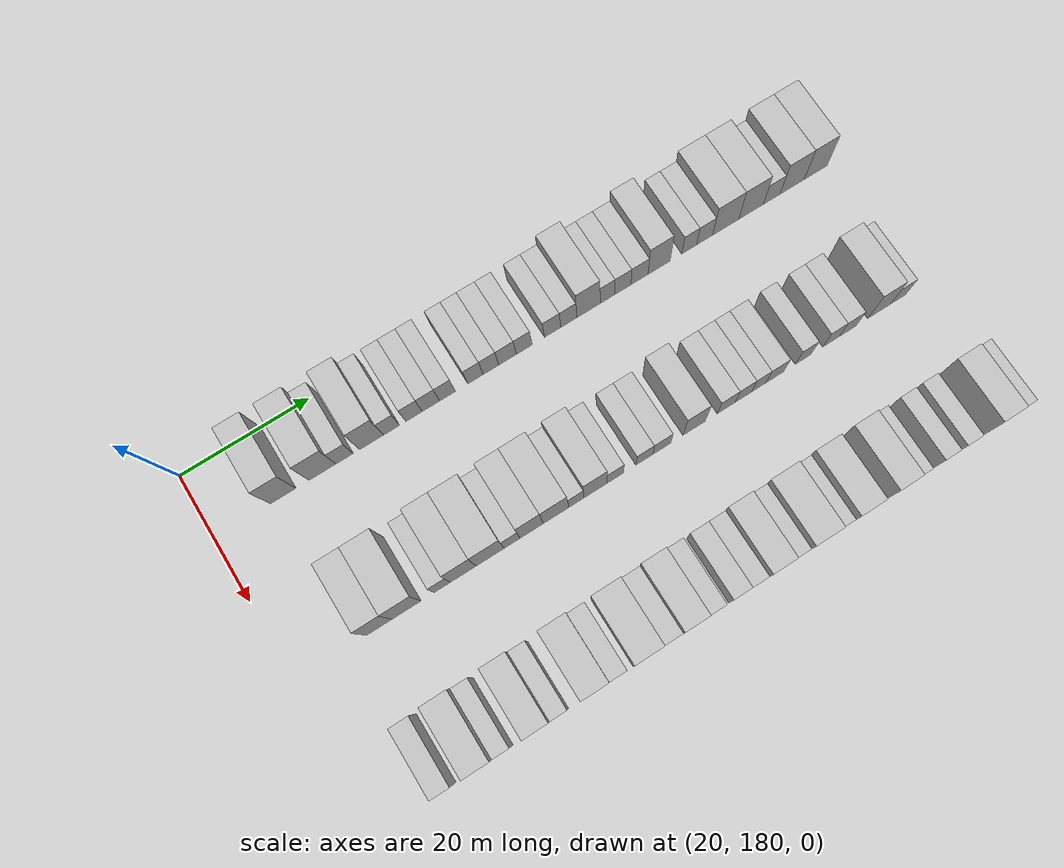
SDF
<sdf version="1.6">
 <world name="default">
  <model name="building_149">
   <static>1</static>
   <pose>25.0000 190.4845 0 0.000000 0.000000 0.000000</pose>
   <link name="link">
    <pose>0 0 4.50 0 0 0</pose>
    <collision name="collision"><geometry><box><size>10.0000 3.9101 9.0000</size></box></geometry></collision>
    <visual name="visual">
     <cast_shadows>0</cast_shadows>
     <geometry><box><size>10.0000 3.9101 9.0000</size></box></geometry>
     <material>
      <script>
       <uri>model://HANNAS_wall/materials/scripts</uri>
       <uri>model://HANNAS_wall/materials/textures</uri>
       <name>vrc/HANNAS_wall</name>
      </script>
     </material>
    </visual>
   </link>
  </model>
  <model name="building_150">
   <static>1</static>
   <pose>25.0000 196.5161 0 0.000000 0.000000 0.000000</pose>
   <link name="link">
    <pose>0 0 4.50 0 0 0</pose>
    <collision name="collision"><geometry><box><size>10.0000 4.1531 9.0000</size></box></geometry></collision>
    <visual name="visual">
     <cast_shadows>0</cast_shadows>
     <geometry><box><size>10.0000 4.1531 9.0000</size></box></geometry>
     <material>
      <script>
       <uri>model://HANNAS_wall/materials/scripts</uri>
       <uri>model://HANNAS_wall/materials/textures</uri>
       <name>vrc/HANNAS_wall</name>
      </script>
     </material>
    </visual>
   </link>
  </model>
  <model name="building_151">
   <static>1</static>
   <pose>25.0000 199.9402 0 0.000000 0.000000 0.000000</pose>
   <link name="link">
    <pose>0 0 3.00 0 0 0</pose>
    <collision name="collision"><geometry><box><size>10.0000 2.6950 6.0000</size></box></geometry></collision>
    <visual name="visual">
     <cast_shadows>0</cast_shadows>
     <geometry><box><size>10.0000 2.6950 6.0000</size></box></geometry>
     <material>
      <script>
       <uri>model://HANNAS_wall/materials/scripts</uri>
       <uri>model://HANNAS_wall/materials/textures</uri>
       <name>vrc/HANNAS_wall</name>
      </script>
     </material>
    </visual>
   </link>
  </model>
  <model name="building_152">
   <static>1</static>
   <pose>25.0000 204.1609 0 0.000000 0.000000 0.000000</pose>
   <link name="link">
    <pose>0 0 4.50 0 0 0</pose>
    <collision name="collision"><geometry><box><size>10.0000 3.7463 9.0000</size></box></geometry></collision>
    <visual name="visual">
     <cast_shadows>0</cast_shadows>
     <geometry><box><size>10.0000 3.7463 9.0000</size></box></geometry>
     <material>
      <script>
       <uri>model://HANNAS_wall/materials/scripts</uri>
       <uri>model://HANNAS_wall/materials/textures</uri>
       <name>vrc/HANNAS_wall</name>
      </script>
     </material>
    </visual>
   </link>
  </model>
  <model name="building_153">
   <static>1</static>
   <pose>25.0000 207.2928 0 0.000000 0.000000 0.000000</pose>
   <link name="link">
    <pose>0 0 3.00 0 0 0</pose>
    <collision name="collision"><geometry><box><size>10.0000 2.5176 6.0000</size></box></geometry></collision>
    <visual name="visual">
     <cast_shadows>0</cast_shadows>
     <geometry><box><size>10.0000 2.5176 6.0000</size></box></geometry>
     <material>
      <script>
       <uri>model://HANNAS_wall/materials/scripts</uri>
       <uri>model://HANNAS_wall/materials/textures</uri>
       <name>vrc/HANNAS_wall</name>
      </script>
     </material>
    </visual>
   </link>
  </model>
  <model name="building_154">
   <static>1</static>
   <pose>25.0000 210.8460 0 0.000000 0.000000 0.000000</pose>
   <link name="link">
    <pose>0 0 3.00 0 0 0</pose>
    <collision name="collision"><geometry><box><size>10.0000 2.5887 6.0000</size></box></geometry></collision>
    <visual name="visual">
     <cast_shadows>0</cast_shadows>
     <geometry><box><size>10.0000 2.5887 6.0000</size></box></geometry>
     <material>
      <script>
       <uri>model://HANNAS_wall/materials/scripts</uri>
       <uri>model://HANNAS_wall/materials/textures</uri>
       <name>vrc/HANNAS_wall</name>
      </script>
     </material>
    </visual>
   </link>
  </model>
  <model name="building_155">
   <static>1</static>
   <pose>25.0000 213.5233 0 0.000000 0.000000 0.000000</pose>
   <link name="link">
    <pose>0 0 3.00 0 0 0</pose>
    <collision name="collision"><geometry><box><size>10.0000 2.7658 6.0000</size></box></geometry></collision>
    <visual name="visual">
     <cast_shadows>0</cast_shadows>
     <geometry><box><size>10.0000 2.7658 6.0000</size></box></geometry>
     <material>
      <script>
       <uri>model://HANNAS_wall/materials/scripts</uri>
       <uri>model://HANNAS_wall/materials/textures</uri>
       <name>vrc/HANNAS_wall</name>
      </script>
     </material>
    </visual>
   </link>
  </model>
  <model name="building_156">
   <static>1</static>
   <pose>25.0000 216.1573 0 0.000000 0.000000 0.000000</pose>
   <link name="link">
    <pose>0 0 3.00 0 0 0</pose>
    <collision name="collision"><geometry><box><size>10.0000 2.5023 6.0000</size></box></geometry></collision>
    <visual name="visual">
     <cast_shadows>0</cast_shadows>
     <geometry><box><size>10.0000 2.5023 6.0000</size></box></geometry>
     <material>
      <script>
       <uri>model://HANNAS_wall/materials/scripts</uri>
       <uri>model://HANNAS_wall/materials/textures</uri>
       <name>vrc/HANNAS_wall</name>
      </script>
     </material>
    </visual>
   </link>
  </model>
  <model name="building_157">
   <static>1</static>
   <pose>25.0000 220.6435 0 0.000000 0.000000 0.000000</pose>
   <link name="link">
    <pose>0 0 3.00 0 0 0</pose>
    <collision name="collision"><geometry><box><size>10.0000 2.4700 6.0000</size></box></geometry></collision>
    <visual name="visual">
     <cast_shadows>0</cast_shadows>
     <geometry><box><size>10.0000 2.4700 6.0000</size></box></geometry>
     <material>
      <script>
       <uri>model://HANNAS_wall/materials/scripts</uri>
       <uri>model://HANNAS_wall/materials/textures</uri>
       <name>vrc/HANNAS_wall</name>
      </script>
     </material>
    </visual>
   </link>
  </model>
  <model name="building_158">
   <static>1</static>
   <pose>25.0000 223.1380 0 0.000000 0.000000 0.000000</pose>
   <link name="link">
    <pose>0 0 3.00 0 0 0</pose>
    <collision name="collision"><geometry><box><size>10.0000 2.5190 6.0000</size></box></geometry></collision>
    <visual name="visual">
     <cast_shadows>0</cast_shadows>
     <geometry><box><size>10.0000 2.5190 6.0000</size></box></geometry>
     <material>
      <script>
       <uri>model://HANNAS_wall/materials/scripts</uri>
       <uri>model://HANNAS_wall/materials/textures</uri>
       <name>vrc/HANNAS_wall</name>
      </script>
     </material>
    </visual>
   </link>
  </model>
  <model name="building_159">
   <static>1</static>
   <pose>25.0000 225.8268 0 0.000000 0.000000 0.000000</pose>
   <link name="link">
    <pose>0 0 3.00 0 0 0</pose>
    <collision name="collision"><geometry><box><size>10.0000 2.8584 6.0000</size></box></geometry></collision>
    <visual name="visual">
     <cast_shadows>0</cast_shadows>
     <geometry><box><size>10.0000 2.8584 6.0000</size></box></geometry>
     <material>
      <script>
       <uri>model://HANNAS_wall/materials/scripts</uri>
       <uri>model://HANNAS_wall/materials/textures</uri>
       <name>vrc/HANNAS_wall</name>
      </script>
     </material>
    </visual>
   </link>
  </model>
  <model name="building_160">
   <static>1</static>
   <pose>25.0000 228.5409 0 0.000000 0.000000 0.000000</pose>
   <link name="link">
    <pose>0 0 3.00 0 0 0</pose>
    <collision name="collision"><geometry><box><size>10.0000 2.5699 6.0000</size></box></geometry></collision>
    <visual name="visual">
     <cast_shadows>0</cast_shadows>
     <geometry><box><size>10.0000 2.5699 6.0000</size></box></geometry>
     <material>
      <script>
       <uri>model://HANNAS_wall/materials/scripts</uri>
       <uri>model://HANNAS_wall/materials/textures</uri>
       <name>vrc/HANNAS_wall</name>
      </script>
     </material>
    </visual>
   </link>
  </model>
  <model name="building_161">
   <static>1</static>
   <pose>25.0000 233.1657 0 0.000000 0.000000 0.000000</pose>
   <link name="link">
    <pose>0 0 3.00 0 0 0</pose>
    <collision name="collision"><geometry><box><size>10.0000 2.6796 6.0000</size></box></geometry></collision>
    <visual name="visual">
     <cast_shadows>0</cast_shadows>
     <geometry><box><size>10.0000 2.6796 6.0000</size></box></geometry>
     <material>
      <script>
       <uri>model://HANNAS_wall/materials/scripts</uri>
       <uri>model://HANNAS_wall/materials/textures</uri>
       <name>vrc/HANNAS_wall</name>
      </script>
     </material>
    </visual>
   </link>
  </model>
  <model name="building_162">
   <static>1</static>
   <pose>25.0000 235.8285 0 0.000000 0.000000 0.000000</pose>
   <link name="link">
    <pose>0 0 3.00 0 0 0</pose>
    <collision name="collision"><geometry><box><size>10.0000 2.6459 6.0000</size></box></geometry></collision>
    <visual name="visual">
     <cast_shadows>0</cast_shadows>
     <geometry><box><size>10.0000 2.6459 6.0000</size></box></geometry>
     <material>
      <script>
       <uri>model://HANNAS_wall/materials/scripts</uri>
       <uri>model://HANNAS_wall/materials/textures</uri>
       <name>vrc/HANNAS_wall</name>
      </script>
     </material>
    </visual>
   </link>
  </model>
  <model name="building_163">
   <static>1</static>
   <pose>25.0000 239.0754 0 0.000000 0.000000 0.000000</pose>
   <link name="link">
    <pose>0 0 4.50 0 0 0</pose>
    <collision name="collision"><geometry><box><size>10.0000 3.8479 9.0000</size></box></geometry></collision>
    <visual name="visual">
     <cast_shadows>0</cast_shadows>
     <geometry><box><size>10.0000 3.8479 9.0000</size></box></geometry>
     <material>
      <script>
       <uri>model://HANNAS_wall/materials/scripts</uri>
       <uri>model://HANNAS_wall/materials/textures</uri>
       <name>vrc/HANNAS_wall</name>
      </script>
     </material>
    </visual>
   </link>
  </model>
  <model name="building_164">
   <static>1</static>
   <pose>25.0000 242.2130 0 0.000000 0.000000 0.000000</pose>
   <link name="link">
    <pose>0 0 3.00 0 0 0</pose>
    <collision name="collision"><geometry><box><size>10.0000 2.4274 6.0000</size></box></geometry></collision>
    <visual name="visual">
     <cast_shadows>0</cast_shadows>
     <geometry><box><size>10.0000 2.4274 6.0000</size></box></geometry>
     <material>
      <script>
       <uri>model://HANNAS_wall/materials/scripts</uri>
       <uri>model://HANNAS_wall/materials/textures</uri>
       <name>vrc/HANNAS_wall</name>
      </script>
     </material>
    </visual>
   </link>
  </model>
  <model name="building_165">
   <static>1</static>
   <pose>25.0000 244.7848 0 0.000000 0.000000 0.000000</pose>
   <link name="link">
    <pose>0 0 3.00 0 0 0</pose>
    <collision name="collision"><geometry><box><size>10.0000 2.7164 6.0000</size></box></geometry></collision>
    <visual name="visual">
     <cast_shadows>0</cast_shadows>
     <geometry><box><size>10.0000 2.7164 6.0000</size></box></geometry>
     <material>
      <script>
       <uri>model://HANNAS_wall/materials/scripts</uri>
       <uri>model://HANNAS_wall/materials/textures</uri>
       <name>vrc/HANNAS_wall</name>
      </script>
     </material>
    </visual>
   </link>
  </model>
  <model name="building_166">
   <static>1</static>
   <pose>25.0000 247.5708 0 0.000000 0.000000 0.000000</pose>
   <link name="link">
    <pose>0 0 3.00 0 0 0</pose>
    <collision name="collision"><geometry><box><size>10.0000 2.8555 6.0000</size></box></geometry></collision>
    <visual name="visual">
     <cast_shadows>0</cast_shadows>
     <geometry><box><size>10.0000 2.8555 6.0000</size></box></geometry>
     <material>
      <script>
       <uri>model://HANNAS_wall/materials/scripts</uri>
       <uri>model://HANNAS_wall/materials/textures</uri>
       <name>vrc/HANNAS_wall</name>
      </script>
     </material>
    </visual>
   </link>
  </model>
  <model name="building_167">
   <static>1</static>
   <pose>25.0000 250.8667 0 0.000000 0.000000 0.000000</pose>
   <link name="link">
    <pose>0 0 4.50 0 0 0</pose>
    <collision name="collision"><geometry><box><size>10.0000 3.7363 9.0000</size></box></geometry></collision>
    <visual name="visual">
     <cast_shadows>0</cast_shadows>
     <geometry><box><size>10.0000 3.7363 9.0000</size></box></geometry>
     <material>
      <script>
       <uri>model://HANNAS_wall/materials/scripts</uri>
       <uri>model://HANNAS_wall/materials/textures</uri>
       <name>vrc/HANNAS_wall</name>
      </script>
     </material>
    </visual>
   </link>
  </model>
  <model name="building_168">
   <static>1</static>
   <pose>25.0000 255.9818 0 0.000000 0.000000 0.000000</pose>
   <link name="link">
    <pose>0 0 3.00 0 0 0</pose>
    <collision name="collision"><geometry><box><size>10.0000 2.4939 6.0000</size></box></geometry></collision>
    <visual name="visual">
     <cast_shadows>0</cast_shadows>
     <geometry><box><size>10.0000 2.4939 6.0000</size></box></geometry>
     <material>
      <script>
       <uri>model://HANNAS_wall/materials/scripts</uri>
       <uri>model://HANNAS_wall/materials/textures</uri>
       <name>vrc/HANNAS_wall</name>
      </script>
     </material>
    </visual>
   </link>
  </model>
  <model name="building_169">
   <static>1</static>
   <pose>25.0000 258.5982 0 0.000000 0.000000 0.000000</pose>
   <link name="link">
    <pose>0 0 3.00 0 0 0</pose>
    <collision name="collision"><geometry><box><size>10.0000 2.7389 6.0000</size></box></geometry></collision>
    <visual name="visual">
     <cast_shadows>0</cast_shadows>
     <geometry><box><size>10.0000 2.7389 6.0000</size></box></geometry>
     <material>
      <script>
       <uri>model://HANNAS_wall/materials/scripts</uri>
       <uri>model://HANNAS_wall/materials/textures</uri>
       <name>vrc/HANNAS_wall</name>
      </script>
     </material>
    </visual>
   </link>
  </model>
  <model name="building_170">
   <static>1</static>
   <pose>25.0000 262.2119 0 0.000000 0.000000 0.000000</pose>
   <link name="link">
    <pose>0 0 4.50 0 0 0</pose>
    <collision name="collision"><geometry><box><size>10.0000 4.4885 9.0000</size></box></geometry></collision>
    <visual name="visual">
     <cast_shadows>0</cast_shadows>
     <geometry><box><size>10.0000 4.4885 9.0000</size></box></geometry>
     <material>
      <script>
       <uri>model://HANNAS_wall/materials/scripts</uri>
       <uri>model://HANNAS_wall/materials/textures</uri>
       <name>vrc/HANNAS_wall</name>
      </script>
     </material>
    </visual>
   </link>
  </model>
  <model name="building_171">
   <static>1</static>
   <pose>25.0000 266.5894 0 0.000000 0.000000 0.000000</pose>
   <link name="link">
    <pose>0 0 4.50 0 0 0</pose>
    <collision name="collision"><geometry><box><size>10.0000 4.2665 9.0000</size></box></geometry></collision>
    <visual name="visual">
     <cast_shadows>0</cast_shadows>
     <geometry><box><size>10.0000 4.2665 9.0000</size></box></geometry>
     <material>
      <script>
       <uri>model://HANNAS_wall/materials/scripts</uri>
       <uri>model://HANNAS_wall/materials/textures</uri>
       <name>vrc/HANNAS_wall</name>
      </script>
     </material>
    </visual>
   </link>
  </model>
  <model name="building_172">
   <static>1</static>
   <pose>25.0000 270.1685 0 0.000000 0.000000 0.000000</pose>
   <link name="link">
    <pose>0 0 3.00 0 0 0</pose>
    <collision name="collision"><geometry><box><size>10.0000 2.8918 6.0000</size></box></geometry></collision>
    <visual name="visual">
     <cast_shadows>0</cast_shadows>
     <geometry><box><size>10.0000 2.8918 6.0000</size></box></geometry>
     <material>
      <script>
       <uri>model://HANNAS_wall/materials/scripts</uri>
       <uri>model://HANNAS_wall/materials/textures</uri>
       <name>vrc/HANNAS_wall</name>
      </script>
     </material>
    </visual>
   </link>
  </model>
  <model name="building_173">
   <static>1</static>
   <pose>25.0000 273.7298 0 0.000000 0.000000 0.000000</pose>
   <link name="link">
    <pose>0 0 4.50 0 0 0</pose>
    <collision name="collision"><geometry><box><size>10.0000 4.2309 9.0000</size></box></geometry></collision>
    <visual name="visual">
     <cast_shadows>0</cast_shadows>
     <geometry><box><size>10.0000 4.2309 9.0000</size></box></geometry>
     <material>
      <script>
       <uri>model://HANNAS_wall/materials/scripts</uri>
       <uri>model://HANNAS_wall/materials/textures</uri>
       <name>vrc/HANNAS_wall</name>
      </script>
     </material>
    </visual>
   </link>
  </model>
  <model name="building_174">
   <static>1</static>
   <pose>25.0000 277.8682 0 0.000000 0.000000 0.000000</pose>
   <link name="link">
    <pose>0 0 4.50 0 0 0</pose>
    <collision name="collision"><geometry><box><size>10.0000 4.0459 9.0000</size></box></geometry></collision>
    <visual name="visual">
     <cast_shadows>0</cast_shadows>
     <geometry><box><size>10.0000 4.0459 9.0000</size></box></geometry>
     <material>
      <script>
       <uri>model://HANNAS_wall/materials/scripts</uri>
       <uri>model://HANNAS_wall/materials/textures</uri>
       <name>vrc/HANNAS_wall</name>
      </script>
     </material>
    </visual>
   </link>
  </model>
  <model name="building_347">
   <static>1</static>
   <pose>47.0000 192.7377 0 0.000000 0.000000 0.000000</pose>
   <link name="link">
    <pose>0 0 4.50 0 0 0</pose>
    <collision name="collision"><geometry><box><size>10.0000 3.8536 9.0000</size></box></geometry></collision>
    <visual name="visual">
     <cast_shadows>0</cast_shadows>
     <geometry><box><size>10.0000 3.8536 9.0000</size></box></geometry>
     <material>
      <script>
       <uri>model://HANNAS_wall/materials/scripts</uri>
       <uri>model://HANNAS_wall/materials/textures</uri>
       <name>vrc/HANNAS_wall</name>
      </script>
     </material>
    </visual>
   </link>
  </model>
  <model name="building_348">
   <static>1</static>
   <pose>47.0000 196.8573 0 0.000000 0.000000 0.000000</pose>
   <link name="link">
    <pose>0 0 4.50 0 0 0</pose>
    <collision name="collision"><geometry><box><size>10.0000 4.3856 9.0000</size></box></geometry></collision>
    <visual name="visual">
     <cast_shadows>0</cast_shadows>
     <geometry><box><size>10.0000 4.3856 9.0000</size></box></geometry>
     <material>
      <script>
       <uri>model://HANNAS_wall/materials/scripts</uri>
       <uri>model://HANNAS_wall/materials/textures</uri>
       <name>vrc/HANNAS_wall</name>
      </script>
     </material>
    </visual>
   </link>
  </model>
  <model name="building_349">
   <static>1</static>
   <pose>47.0000 202.2969 0 0.000000 0.000000 0.000000</pose>
   <link name="link">
    <pose>0 0 3.00 0 0 0</pose>
    <collision name="collision"><geometry><box><size>10.0000 2.4935 6.0000</size></box></geometry></collision>
    <visual name="visual">
     <cast_shadows>0</cast_shadows>
     <geometry><box><size>10.0000 2.4935 6.0000</size></box></geometry>
     <material>
      <script>
       <uri>model://HANNAS_wall/materials/scripts</uri>
       <uri>model://HANNAS_wall/materials/textures</uri>
       <name>vrc/HANNAS_wall</name>
      </script>
     </material>
    </visual>
   </link>
  </model>
  <model name="building_350">
   <static>1</static>
   <pose>47.0000 205.5226 0 0.000000 0.000000 0.000000</pose>
   <link name="link">
    <pose>0 0 4.50 0 0 0</pose>
    <collision name="collision"><geometry><box><size>10.0000 3.9578 9.0000</size></box></geometry></collision>
    <visual name="visual">
     <cast_shadows>0</cast_shadows>
     <geometry><box><size>10.0000 3.9578 9.0000</size></box></geometry>
     <material>
      <script>
       <uri>model://HANNAS_wall/materials/scripts</uri>
       <uri>model://HANNAS_wall/materials/textures</uri>
       <name>vrc/HANNAS_wall</name>
      </script>
     </material>
    </visual>
   </link>
  </model>
  <model name="building_351">
   <static>1</static>
   <pose>47.0000 209.6804 0 0.000000 0.000000 0.000000</pose>
   <link name="link">
    <pose>0 0 4.50 0 0 0</pose>
    <collision name="collision"><geometry><box><size>10.0000 4.3578 9.0000</size></box></geometry></collision>
    <visual name="visual">
     <cast_shadows>0</cast_shadows>
     <geometry><box><size>10.0000 4.3578 9.0000</size></box></geometry>
     <material>
      <script>
       <uri>model://HANNAS_wall/materials/scripts</uri>
       <uri>model://HANNAS_wall/materials/textures</uri>
       <name>vrc/HANNAS_wall</name>
      </script>
     </material>
    </visual>
   </link>
  </model>
  <model name="building_352">
   <static>1</static>
   <pose>47.0000 213.0837 0 0.000000 0.000000 0.000000</pose>
   <link name="link">
    <pose>0 0 3.00 0 0 0</pose>
    <collision name="collision"><geometry><box><size>10.0000 2.4490 6.0000</size></box></geometry></collision>
    <visual name="visual">
     <cast_shadows>0</cast_shadows>
     <geometry><box><size>10.0000 2.4490 6.0000</size></box></geometry>
     <material>
      <script>
       <uri>model://HANNAS_wall/materials/scripts</uri>
       <uri>model://HANNAS_wall/materials/textures</uri>
       <name>vrc/HANNAS_wall</name>
      </script>
     </material>
    </visual>
   </link>
  </model>
  <model name="building_353">
   <static>1</static>
   <pose>47.0000 216.1208 0 0.000000 0.000000 0.000000</pose>
   <link name="link">
    <pose>0 0 4.50 0 0 0</pose>
    <collision name="collision"><geometry><box><size>10.0000 3.6252 9.0000</size></box></geometry></collision>
    <visual name="visual">
     <cast_shadows>0</cast_shadows>
     <geometry><box><size>10.0000 3.6252 9.0000</size></box></geometry>
     <material>
      <script>
       <uri>model://HANNAS_wall/materials/scripts</uri>
       <uri>model://HANNAS_wall/materials/textures</uri>
       <name>vrc/HANNAS_wall</name>
      </script>
     </material>
    </visual>
   </link>
  </model>
  <model name="building_354">
   <static>1</static>
   <pose>47.0000 219.9612 0 0.000000 0.000000 0.000000</pose>
   <link name="link">
    <pose>0 0 4.50 0 0 0</pose>
    <collision name="collision"><geometry><box><size>10.0000 4.0556 9.0000</size></box></geometry></collision>
    <visual name="visual">
     <cast_shadows>0</cast_shadows>
     <geometry><box><size>10.0000 4.0556 9.0000</size></box></geometry>
     <material>
      <script>
       <uri>model://HANNAS_wall/materials/scripts</uri>
       <uri>model://HANNAS_wall/materials/textures</uri>
       <name>vrc/HANNAS_wall</name>
      </script>
     </material>
    </visual>
   </link>
  </model>
  <model name="building_355">
   <static>1</static>
   <pose>47.0000 223.1925 0 0.000000 0.000000 0.000000</pose>
   <link name="link">
    <pose>0 0 3.00 0 0 0</pose>
    <collision name="collision"><geometry><box><size>10.0000 2.4069 6.0000</size></box></geometry></collision>
    <visual name="visual">
     <cast_shadows>0</cast_shadows>
     <geometry><box><size>10.0000 2.4069 6.0000</size></box></geometry>
     <material>
      <script>
       <uri>model://HANNAS_wall/materials/scripts</uri>
       <uri>model://HANNAS_wall/materials/textures</uri>
       <name>vrc/HANNAS_wall</name>
      </script>
     </material>
    </visual>
   </link>
  </model>
  <model name="building_356">
   <static>1</static>
   <pose>47.0000 226.2281 0 0.000000 0.000000 0.000000</pose>
   <link name="link">
    <pose>0 0 4.50 0 0 0</pose>
    <collision name="collision"><geometry><box><size>10.0000 3.6644 9.0000</size></box></geometry></collision>
    <visual name="visual">
     <cast_shadows>0</cast_shadows>
     <geometry><box><size>10.0000 3.6644 9.0000</size></box></geometry>
     <material>
      <script>
       <uri>model://HANNAS_wall/materials/scripts</uri>
       <uri>model://HANNAS_wall/materials/textures</uri>
       <name>vrc/HANNAS_wall</name>
      </script>
     </material>
    </visual>
   </link>
  </model>
  <model name="building_357">
   <static>1</static>
   <pose>47.0000 229.3748 0 0.000000 0.000000 0.000000</pose>
   <link name="link">
    <pose>0 0 3.00 0 0 0</pose>
    <collision name="collision"><geometry><box><size>10.0000 2.6289 6.0000</size></box></geometry></collision>
    <visual name="visual">
     <cast_shadows>0</cast_shadows>
     <geometry><box><size>10.0000 2.6289 6.0000</size></box></geometry>
     <material>
      <script>
       <uri>model://HANNAS_wall/materials/scripts</uri>
       <uri>model://HANNAS_wall/materials/textures</uri>
       <name>vrc/HANNAS_wall</name>
      </script>
     </material>
    </visual>
   </link>
  </model>
  <model name="building_358">
   <static>1</static>
   <pose>47.0000 234.0326 0 0.000000 0.000000 0.000000</pose>
   <link name="link">
    <pose>0 0 3.00 0 0 0</pose>
    <collision name="collision"><geometry><box><size>10.0000 2.6867 6.0000</size></box></geometry></collision>
    <visual name="visual">
     <cast_shadows>0</cast_shadows>
     <geometry><box><size>10.0000 2.6867 6.0000</size></box></geometry>
     <material>
      <script>
       <uri>model://HANNAS_wall/materials/scripts</uri>
       <uri>model://HANNAS_wall/materials/textures</uri>
       <name>vrc/HANNAS_wall</name>
      </script>
     </material>
    </visual>
   </link>
  </model>
  <model name="building_359">
   <static>1</static>
   <pose>47.0000 236.8508 0 0.000000 0.000000 0.000000</pose>
   <link name="link">
    <pose>0 0 3.00 0 0 0</pose>
    <collision name="collision"><geometry><box><size>10.0000 2.9497 6.0000</size></box></geometry></collision>
    <visual name="visual">
     <cast_shadows>0</cast_shadows>
     <geometry><box><size>10.0000 2.9497 6.0000</size></box></geometry>
     <material>
      <script>
       <uri>model://HANNAS_wall/materials/scripts</uri>
       <uri>model://HANNAS_wall/materials/textures</uri>
       <name>vrc/HANNAS_wall</name>
      </script>
     </material>
    </visual>
   </link>
  </model>
  <model name="building_360">
   <static>1</static>
   <pose>47.0000 242.1420 0 0.000000 0.000000 0.000000</pose>
   <link name="link">
    <pose>0 0 4.50 0 0 0</pose>
    <collision name="collision"><geometry><box><size>10.0000 3.6325 9.0000</size></box></geometry></collision>
    <visual name="visual">
     <cast_shadows>0</cast_shadows>
     <geometry><box><size>10.0000 3.6325 9.0000</size></box></geometry>
     <material>
      <script>
       <uri>model://HANNAS_wall/materials/scripts</uri>
       <uri>model://HANNAS_wall/materials/textures</uri>
       <name>vrc/HANNAS_wall</name>
      </script>
     </material>
    </visual>
   </link>
  </model>
  <model name="building_361">
   <static>1</static>
   <pose>47.0000 247.4253 0 0.000000 0.000000 0.000000</pose>
   <link name="link">
    <pose>0 0 3.00 0 0 0</pose>
    <collision name="collision"><geometry><box><size>10.0000 2.9342 6.0000</size></box></geometry></collision>
    <visual name="visual">
     <cast_shadows>0</cast_shadows>
     <geometry><box><size>10.0000 2.9342 6.0000</size></box></geometry>
     <material>
      <script>
       <uri>model://HANNAS_wall/materials/scripts</uri>
       <uri>model://HANNAS_wall/materials/textures</uri>
       <name>vrc/HANNAS_wall</name>
      </script>
     </material>
    </visual>
   </link>
  </model>
  <model name="building_362">
   <static>1</static>
   <pose>47.0000 250.2320 0 0.000000 0.000000 0.000000</pose>
   <link name="link">
    <pose>0 0 3.00 0 0 0</pose>
    <collision name="collision"><geometry><box><size>10.0000 2.6792 6.0000</size></box></geometry></collision>
    <visual name="visual">
     <cast_shadows>0</cast_shadows>
     <geometry><box><size>10.0000 2.6792 6.0000</size></box></geometry>
     <material>
      <script>
       <uri>model://HANNAS_wall/materials/scripts</uri>
       <uri>model://HANNAS_wall/materials/textures</uri>
       <name>vrc/HANNAS_wall</name>
      </script>
     </material>
    </visual>
   </link>
  </model>
  <model name="building_363">
   <static>1</static>
   <pose>47.0000 252.7815 0 0.000000 0.000000 0.000000</pose>
   <link name="link">
    <pose>0 0 3.00 0 0 0</pose>
    <collision name="collision"><geometry><box><size>10.0000 2.4199 6.0000</size></box></geometry></collision>
    <visual name="visual">
     <cast_shadows>0</cast_shadows>
     <geometry><box><size>10.0000 2.4199 6.0000</size></box></geometry>
     <material>
      <script>
       <uri>model://HANNAS_wall/materials/scripts</uri>
       <uri>model://HANNAS_wall/materials/textures</uri>
       <name>vrc/HANNAS_wall</name>
      </script>
     </material>
    </visual>
   </link>
  </model>
  <model name="building_364">
   <static>1</static>
   <pose>47.0000 255.4816 0 0.000000 0.000000 0.000000</pose>
   <link name="link">
    <pose>0 0 3.00 0 0 0</pose>
    <collision name="collision"><geometry><box><size>10.0000 2.9803 6.0000</size></box></geometry></collision>
    <visual name="visual">
     <cast_shadows>0</cast_shadows>
     <geometry><box><size>10.0000 2.9803 6.0000</size></box></geometry>
     <material>
      <script>
       <uri>model://HANNAS_wall/materials/scripts</uri>
       <uri>model://HANNAS_wall/materials/textures</uri>
       <name>vrc/HANNAS_wall</name>
      </script>
     </material>
    </visual>
   </link>
  </model>
  <model name="building_365">
   <static>1</static>
   <pose>47.0000 260.2961 0 0.000000 0.000000 0.000000</pose>
   <link name="link">
    <pose>0 0 3.00 0 0 0</pose>
    <collision name="collision"><geometry><box><size>10.0000 2.6486 6.0000</size></box></geometry></collision>
    <visual name="visual">
     <cast_shadows>0</cast_shadows>
     <geometry><box><size>10.0000 2.6486 6.0000</size></box></geometry>
     <material>
      <script>
       <uri>model://HANNAS_wall/materials/scripts</uri>
       <uri>model://HANNAS_wall/materials/textures</uri>
       <name>vrc/HANNAS_wall</name>
      </script>
     </material>
    </visual>
   </link>
  </model>
  <model name="building_366">
   <static>1</static>
   <pose>47.0000 264.9811 0 0.000000 0.000000 0.000000</pose>
   <link name="link">
    <pose>0 0 3.00 0 0 0</pose>
    <collision name="collision"><geometry><box><size>10.0000 2.7214 6.0000</size></box></geometry></collision>
    <visual name="visual">
     <cast_shadows>0</cast_shadows>
     <geometry><box><size>10.0000 2.7214 6.0000</size></box></geometry>
     <material>
      <script>
       <uri>model://HANNAS_wall/materials/scripts</uri>
       <uri>model://HANNAS_wall/materials/textures</uri>
       <name>vrc/HANNAS_wall</name>
      </script>
     </material>
    </visual>
   </link>
  </model>
  <model name="building_367">
   <static>1</static>
   <pose>47.0000 267.8146 0 0.000000 0.000000 0.000000</pose>
   <link name="link">
    <pose>0 0 3.00 0 0 0</pose>
    <collision name="collision"><geometry><box><size>10.0000 2.9456 6.0000</size></box></geometry></collision>
    <visual name="visual">
     <cast_shadows>0</cast_shadows>
     <geometry><box><size>10.0000 2.9456 6.0000</size></box></geometry>
     <material>
      <script>
       <uri>model://HANNAS_wall/materials/scripts</uri>
       <uri>model://HANNAS_wall/materials/textures</uri>
       <name>vrc/HANNAS_wall</name>
      </script>
     </material>
    </visual>
   </link>
  </model>
  <model name="building_368">
   <static>1</static>
   <pose>47.0000 273.2220 0 0.000000 0.000000 0.000000</pose>
   <link name="link">
    <pose>0 0 4.50 0 0 0</pose>
    <collision name="collision"><geometry><box><size>10.0000 3.8690 9.0000</size></box></geometry></collision>
    <visual name="visual">
     <cast_shadows>0</cast_shadows>
     <geometry><box><size>10.0000 3.8690 9.0000</size></box></geometry>
     <material>
      <script>
       <uri>model://HANNAS_wall/materials/scripts</uri>
       <uri>model://HANNAS_wall/materials/textures</uri>
       <name>vrc/HANNAS_wall</name>
      </script>
     </material>
    </visual>
   </link>
  </model>
  <model name="building_369">
   <static>1</static>
   <pose>47.0000 276.5035 0 0.000000 0.000000 0.000000</pose>
   <link name="link">
    <pose>0 0 3.00 0 0 0</pose>
    <collision name="collision"><geometry><box><size>10.0000 2.6941 6.0000</size></box></geometry></collision>
    <visual name="visual">
     <cast_shadows>0</cast_shadows>
     <geometry><box><size>10.0000 2.6941 6.0000</size></box></geometry>
     <material>
      <script>
       <uri>model://HANNAS_wall/materials/scripts</uri>
       <uri>model://HANNAS_wall/materials/textures</uri>
       <name>vrc/HANNAS_wall</name>
      </script>
     </material>
    </visual>
   </link>
  </model>
  <model name="building_533">
   <static>1</static>
   <pose>69.0000 189.7970 0 0.000000 0.000000 0.000000</pose>
   <link name="link">
    <pose>0 0 3.00 0 0 0</pose>
    <collision name="collision"><geometry><box><size>10.0000 2.9144 6.0000</size></box></geometry></collision>
    <visual name="visual">
     <cast_shadows>0</cast_shadows>
     <geometry><box><size>10.0000 2.9144 6.0000</size></box></geometry>
     <material>
      <script>
       <uri>model://HANNAS_wall/materials/scripts</uri>
       <uri>model://HANNAS_wall/materials/textures</uri>
       <name>vrc/HANNAS_wall</name>
      </script>
     </material>
    </visual>
   </link>
  </model>
  <model name="building_534">
   <static>1</static>
   <pose>69.0000 195.2391 0 0.000000 0.000000 0.000000</pose>
   <link name="link">
    <pose>0 0 4.50 0 0 0</pose>
    <collision name="collision"><geometry><box><size>10.0000 3.9698 9.0000</size></box></geometry></collision>
    <visual name="visual">
     <cast_shadows>0</cast_shadows>
     <geometry><box><size>10.0000 3.9698 9.0000</size></box></geometry>
     <material>
      <script>
       <uri>model://HANNAS_wall/materials/scripts</uri>
       <uri>model://HANNAS_wall/materials/textures</uri>
       <name>vrc/HANNAS_wall</name>
      </script>
     </material>
    </visual>
   </link>
  </model>
  <model name="building_535">
   <static>1</static>
   <pose>69.0000 198.4767 0 0.000000 0.000000 0.000000</pose>
   <link name="link">
    <pose>0 0 3.00 0 0 0</pose>
    <collision name="collision"><geometry><box><size>10.0000 2.5056 6.0000</size></box></geometry></collision>
    <visual name="visual">
     <cast_shadows>0</cast_shadows>
     <geometry><box><size>10.0000 2.5056 6.0000</size></box></geometry>
     <material>
      <script>
       <uri>model://HANNAS_wall/materials/scripts</uri>
       <uri>model://HANNAS_wall/materials/textures</uri>
       <name>vrc/HANNAS_wall</name>
      </script>
     </material>
    </visual>
   </link>
  </model>
  <model name="building_536">
   <static>1</static>
   <pose>69.0000 203.6301 0 0.000000 0.000000 0.000000</pose>
   <link name="link">
    <pose>0 0 4.50 0 0 0</pose>
    <collision name="collision"><geometry><box><size>10.0000 3.8012 9.0000</size></box></geometry></collision>
    <visual name="visual">
     <cast_shadows>0</cast_shadows>
     <geometry><box><size>10.0000 3.8012 9.0000</size></box></geometry>
     <material>
      <script>
       <uri>model://HANNAS_wall/materials/scripts</uri>
       <uri>model://HANNAS_wall/materials/textures</uri>
       <name>vrc/HANNAS_wall</name>
      </script>
     </material>
    </visual>
   </link>
  </model>
  <model name="building_537">
   <static>1</static>
   <pose>69.0000 206.8130 0 0.000000 0.000000 0.000000</pose>
   <link name="link">
    <pose>0 0 3.00 0 0 0</pose>
    <collision name="collision"><geometry><box><size>10.0000 2.5647 6.0000</size></box></geometry></collision>
    <visual name="visual">
     <cast_shadows>0</cast_shadows>
     <geometry><box><size>10.0000 2.5647 6.0000</size></box></geometry>
     <material>
      <script>
       <uri>model://HANNAS_wall/materials/scripts</uri>
       <uri>model://HANNAS_wall/materials/textures</uri>
       <name>vrc/HANNAS_wall</name>
      </script>
     </material>
    </visual>
   </link>
  </model>
  <model name="building_538">
   <static>1</static>
   <pose>69.0000 212.1803 0 0.000000 0.000000 0.000000</pose>
   <link name="link">
    <pose>0 0 4.50 0 0 0</pose>
    <collision name="collision"><geometry><box><size>10.0000 4.1698 9.0000</size></box></geometry></collision>
    <visual name="visual">
     <cast_shadows>0</cast_shadows>
     <geometry><box><size>10.0000 4.1698 9.0000</size></box></geometry>
     <material>
      <script>
       <uri>model://HANNAS_wall/materials/scripts</uri>
       <uri>model://HANNAS_wall/materials/textures</uri>
       <name>vrc/HANNAS_wall</name>
      </script>
     </material>
    </visual>
   </link>
  </model>
  <model name="building_539">
   <static>1</static>
   <pose>69.0000 215.5992 0 0.000000 0.000000 0.000000</pose>
   <link name="link">
    <pose>0 0 3.00 0 0 0</pose>
    <collision name="collision"><geometry><box><size>10.0000 2.6681 6.0000</size></box></geometry></collision>
    <visual name="visual">
     <cast_shadows>0</cast_shadows>
     <geometry><box><size>10.0000 2.6681 6.0000</size></box></geometry>
     <material>
      <script>
       <uri>model://HANNAS_wall/materials/scripts</uri>
       <uri>model://HANNAS_wall/materials/textures</uri>
       <name>vrc/HANNAS_wall</name>
      </script>
     </material>
    </visual>
   </link>
  </model>
  <model name="building_540">
   <static>1</static>
   <pose>69.0000 220.1530 0 0.000000 0.000000 0.000000</pose>
   <link name="link">
    <pose>0 0 4.50 0 0 0</pose>
    <collision name="collision"><geometry><box><size>10.0000 4.4395 9.0000</size></box></geometry></collision>
    <visual name="visual">
     <cast_shadows>0</cast_shadows>
     <geometry><box><size>10.0000 4.4395 9.0000</size></box></geometry>
     <material>
      <script>
       <uri>model://HANNAS_wall/materials/scripts</uri>
       <uri>model://HANNAS_wall/materials/textures</uri>
       <name>vrc/HANNAS_wall</name>
      </script>
     </material>
    </visual>
   </link>
  </model>
  <model name="building_541">
   <static>1</static>
   <pose>69.0000 223.8488 0 0.000000 0.000000 0.000000</pose>
   <link name="link">
    <pose>0 0 3.00 0 0 0</pose>
    <collision name="collision"><geometry><box><size>10.0000 2.9520 6.0000</size></box></geometry></collision>
    <visual name="visual">
     <cast_shadows>0</cast_shadows>
     <geometry><box><size>10.0000 2.9520 6.0000</size></box></geometry>
     <material>
      <script>
       <uri>model://HANNAS_wall/materials/scripts</uri>
       <uri>model://HANNAS_wall/materials/textures</uri>
       <name>vrc/HANNAS_wall</name>
      </script>
     </material>
    </visual>
   </link>
  </model>
  <model name="building_542">
   <static>1</static>
   <pose>69.0000 227.2442 0 0.000000 0.000000 0.000000</pose>
   <link name="link">
    <pose>0 0 4.50 0 0 0</pose>
    <collision name="collision"><geometry><box><size>10.0000 3.8388 9.0000</size></box></geometry></collision>
    <visual name="visual">
     <cast_shadows>0</cast_shadows>
     <geometry><box><size>10.0000 3.8388 9.0000</size></box></geometry>
     <material>
      <script>
       <uri>model://HANNAS_wall/materials/scripts</uri>
       <uri>model://HANNAS_wall/materials/textures</uri>
       <name>vrc/HANNAS_wall</name>
      </script>
     </material>
    </visual>
   </link>
  </model>
  <model name="building_543">
   <static>1</static>
   <pose>69.0000 230.5587 0 0.000000 0.000000 0.000000</pose>
   <link name="link">
    <pose>0 0 3.00 0 0 0</pose>
    <collision name="collision"><geometry><box><size>10.0000 2.7902 6.0000</size></box></geometry></collision>
    <visual name="visual">
     <cast_shadows>0</cast_shadows>
     <geometry><box><size>10.0000 2.7902 6.0000</size></box></geometry>
     <material>
      <script>
       <uri>model://HANNAS_wall/materials/scripts</uri>
       <uri>model://HANNAS_wall/materials/textures</uri>
       <name>vrc/HANNAS_wall</name>
      </script>
     </material>
    </visual>
   </link>
  </model>
  <model name="building_544">
   <static>1</static>
   <pose>69.0000 234.4153 0 0.000000 0.000000 0.000000</pose>
   <link name="link">
    <pose>0 0 3.00 0 0 0</pose>
    <collision name="collision"><geometry><box><size>10.0000 2.9231 6.0000</size></box></geometry></collision>
    <visual name="visual">
     <cast_shadows>0</cast_shadows>
     <geometry><box><size>10.0000 2.9231 6.0000</size></box></geometry>
     <material>
      <script>
       <uri>model://HANNAS_wall/materials/scripts</uri>
       <uri>model://HANNAS_wall/materials/textures</uri>
       <name>vrc/HANNAS_wall</name>
      </script>
     </material>
    </visual>
   </link>
  </model>
  <model name="building_545">
   <static>1</static>
   <pose>69.0000 237.1555 0 0.000000 0.000000 0.000000</pose>
   <link name="link">
    <pose>0 0 3.00 0 0 0</pose>
    <collision name="collision"><geometry><box><size>10.0000 2.5572 6.0000</size></box></geometry></collision>
    <visual name="visual">
     <cast_shadows>0</cast_shadows>
     <geometry><box><size>10.0000 2.5572 6.0000</size></box></geometry>
     <material>
      <script>
       <uri>model://HANNAS_wall/materials/scripts</uri>
       <uri>model://HANNAS_wall/materials/textures</uri>
       <name>vrc/HANNAS_wall</name>
      </script>
     </material>
    </visual>
   </link>
  </model>
  <model name="building_546">
   <static>1</static>
   <pose>69.0000 240.3506 0 0.000000 0.000000 0.000000</pose>
   <link name="link">
    <pose>0 0 4.50 0 0 0</pose>
    <collision name="collision"><geometry><box><size>10.0000 3.8331 9.0000</size></box></geometry></collision>
    <visual name="visual">
     <cast_shadows>0</cast_shadows>
     <geometry><box><size>10.0000 3.8331 9.0000</size></box></geometry>
     <material>
      <script>
       <uri>model://HANNAS_wall/materials/scripts</uri>
       <uri>model://HANNAS_wall/materials/textures</uri>
       <name>vrc/HANNAS_wall</name>
      </script>
     </material>
    </visual>
   </link>
  </model>
  <model name="building_547">
   <static>1</static>
   <pose>69.0000 243.6022 0 0.000000 0.000000 0.000000</pose>
   <link name="link">
    <pose>0 0 3.00 0 0 0</pose>
    <collision name="collision"><geometry><box><size>10.0000 2.6700 6.0000</size></box></geometry></collision>
    <visual name="visual">
     <cast_shadows>0</cast_shadows>
     <geometry><box><size>10.0000 2.6700 6.0000</size></box></geometry>
     <material>
      <script>
       <uri>model://HANNAS_wall/materials/scripts</uri>
       <uri>model://HANNAS_wall/materials/textures</uri>
       <name>vrc/HANNAS_wall</name>
      </script>
     </material>
    </visual>
   </link>
  </model>
  <model name="building_548">
   <static>1</static>
   <pose>69.0000 247.1801 0 0.000000 0.000000 0.000000</pose>
   <link name="link">
    <pose>0 0 4.50 0 0 0</pose>
    <collision name="collision"><geometry><box><size>10.0000 4.4858 9.0000</size></box></geometry></collision>
    <visual name="visual">
     <cast_shadows>0</cast_shadows>
     <geometry><box><size>10.0000 4.4858 9.0000</size></box></geometry>
     <material>
      <script>
       <uri>model://HANNAS_wall/materials/scripts</uri>
       <uri>model://HANNAS_wall/materials/textures</uri>
       <name>vrc/HANNAS_wall</name>
      </script>
     </material>
    </visual>
   </link>
  </model>
  <model name="building_549">
   <static>1</static>
   <pose>69.0000 250.6579 0 0.000000 0.000000 0.000000</pose>
   <link name="link">
    <pose>0 0 3.00 0 0 0</pose>
    <collision name="collision"><geometry><box><size>10.0000 2.4698 6.0000</size></box></geometry></collision>
    <visual name="visual">
     <cast_shadows>0</cast_shadows>
     <geometry><box><size>10.0000 2.4698 6.0000</size></box></geometry>
     <material>
      <script>
       <uri>model://HANNAS_wall/materials/scripts</uri>
       <uri>model://HANNAS_wall/materials/textures</uri>
       <name>vrc/HANNAS_wall</name>
      </script>
     </material>
    </visual>
   </link>
  </model>
  <model name="building_550">
   <static>1</static>
   <pose>69.0000 253.9190 0 0.000000 0.000000 0.000000</pose>
   <link name="link">
    <pose>0 0 4.50 0 0 0</pose>
    <collision name="collision"><geometry><box><size>10.0000 4.0524 9.0000</size></box></geometry></collision>
    <visual name="visual">
     <cast_shadows>0</cast_shadows>
     <geometry><box><size>10.0000 4.0524 9.0000</size></box></geometry>
     <material>
      <script>
       <uri>model://HANNAS_wall/materials/scripts</uri>
       <uri>model://HANNAS_wall/materials/textures</uri>
       <name>vrc/HANNAS_wall</name>
      </script>
     </material>
    </visual>
   </link>
  </model>
  <model name="building_551">
   <static>1</static>
   <pose>69.0000 259.8362 0 0.000000 0.000000 0.000000</pose>
   <link name="link">
    <pose>0 0 4.50 0 0 0</pose>
    <collision name="collision"><geometry><box><size>10.0000 3.7818 9.0000</size></box></geometry></collision>
    <visual name="visual">
     <cast_shadows>0</cast_shadows>
     <geometry><box><size>10.0000 3.7818 9.0000</size></box></geometry>
     <material>
      <script>
       <uri>model://HANNAS_wall/materials/scripts</uri>
       <uri>model://HANNAS_wall/materials/textures</uri>
       <name>vrc/HANNAS_wall</name>
      </script>
     </material>
    </visual>
   </link>
  </model>
  <model name="building_552">
   <static>1</static>
   <pose>69.0000 262.9748 0 0.000000 0.000000 0.000000</pose>
   <link name="link">
    <pose>0 0 3.00 0 0 0</pose>
    <collision name="collision"><geometry><box><size>10.0000 2.4955 6.0000</size></box></geometry></collision>
    <visual name="visual">
     <cast_shadows>0</cast_shadows>
     <geometry><box><size>10.0000 2.4955 6.0000</size></box></geometry>
     <material>
      <script>
       <uri>model://HANNAS_wall/materials/scripts</uri>
       <uri>model://HANNAS_wall/materials/textures</uri>
       <name>vrc/HANNAS_wall</name>
      </script>
     </material>
    </visual>
   </link>
  </model>
  <model name="building_553">
   <static>1</static>
   <pose>69.0000 267.5126 0 0.000000 0.000000 0.000000</pose>
   <link name="link">
    <pose>0 0 3.00 0 0 0</pose>
    <collision name="collision"><geometry><box><size>10.0000 2.5801 6.0000</size></box></geometry></collision>
    <visual name="visual">
     <cast_shadows>0</cast_shadows>
     <geometry><box><size>10.0000 2.5801 6.0000</size></box></geometry>
     <material>
      <script>
       <uri>model://HANNAS_wall/materials/scripts</uri>
       <uri>model://HANNAS_wall/materials/textures</uri>
       <name>vrc/HANNAS_wall</name>
      </script>
     </material>
    </visual>
   </link>
  </model>
  <model name="building_554">
   <static>1</static>
   <pose>69.0000 271.0934 0 0.000000 0.000000 0.000000</pose>
   <link name="link">
    <pose>0 0 3.00 0 0 0</pose>
    <collision name="collision"><geometry><box><size>10.0000 2.5815 6.0000</size></box></geometry></collision>
    <visual name="visual">
     <cast_shadows>0</cast_shadows>
     <geometry><box><size>10.0000 2.5815 6.0000</size></box></geometry>
     <material>
      <script>
       <uri>model://HANNAS_wall/materials/scripts</uri>
       <uri>model://HANNAS_wall/materials/textures</uri>
       <name>vrc/HANNAS_wall</name>
      </script>
     </material>
    </visual>
   </link>
  </model>
  <model name="building_555">
   <static>1</static>
   <pose>69.0000 276.3134 0 0.000000 0.000000 0.000000</pose>
   <link name="link">
    <pose>0 0 4.50 0 0 0</pose>
    <collision name="collision"><geometry><box><size>10.0000 3.8586 9.0000</size></box></geometry></collision>
    <visual name="visual">
     <cast_shadows>0</cast_shadows>
     <geometry><box><size>10.0000 3.8586 9.0000</size></box></geometry>
     <material>
      <script>
       <uri>model://HANNAS_wall/materials/scripts</uri>
       <uri>model://HANNAS_wall/materials/textures</uri>
       <name>vrc/HANNAS_wall</name>
      </script>
     </material>
    </visual>
   </link>
  </model>
  <model name="building_556">
   <static>1</static>
   <pose>69.0000 279.7106 0 0.000000 0.000000 0.000000</pose>
   <link name="link">
    <pose>0 0 3.00 0 0 0</pose>
    <collision name="collision"><geometry><box><size>10.0000 2.9357 6.0000</size></box></geometry></collision>
    <visual name="visual">
     <cast_shadows>0</cast_shadows>
     <geometry><box><size>10.0000 2.9357 6.0000</size></box></geometry>
     <material>
      <script>
       <uri>model://HANNAS_wall/materials/scripts</uri>
       <uri>model://HANNAS_wall/materials/textures</uri>
       <name>vrc/HANNAS_wall</name>
      </script>
     </material>
    </visual>
   </link>
  </model>
 </world>
</sdf>
